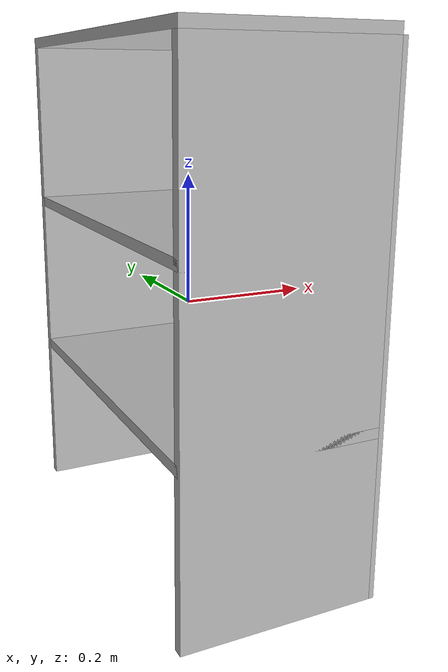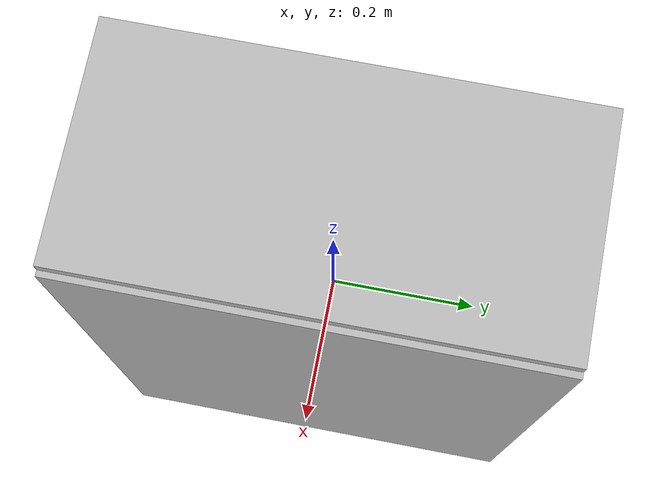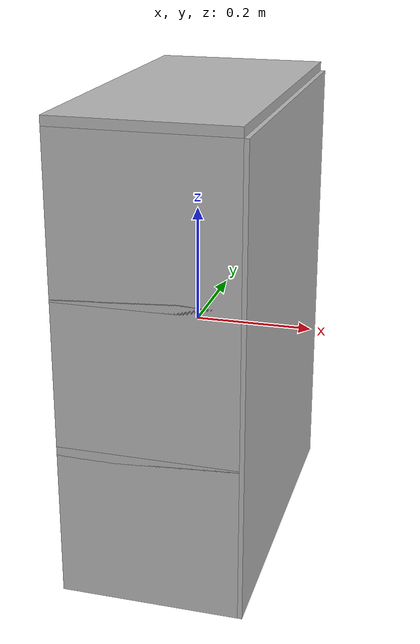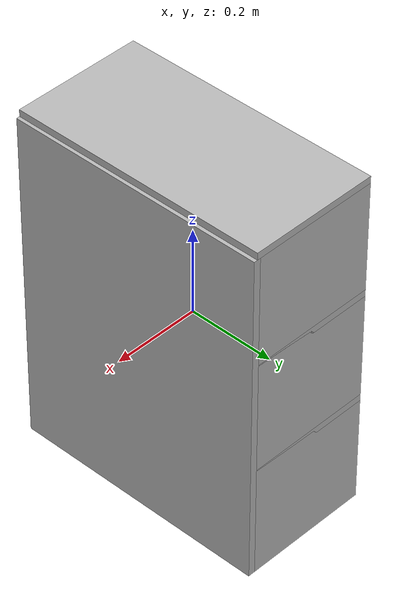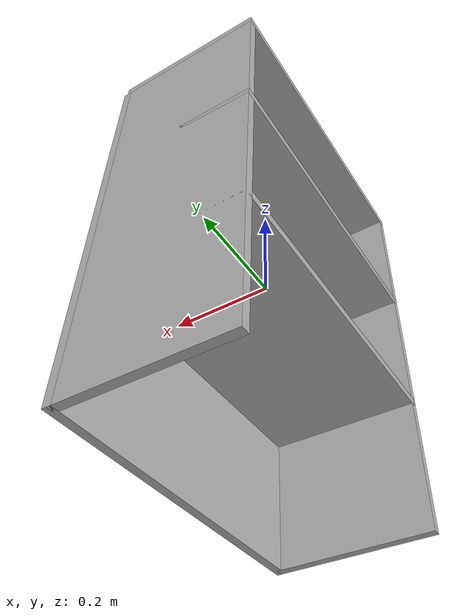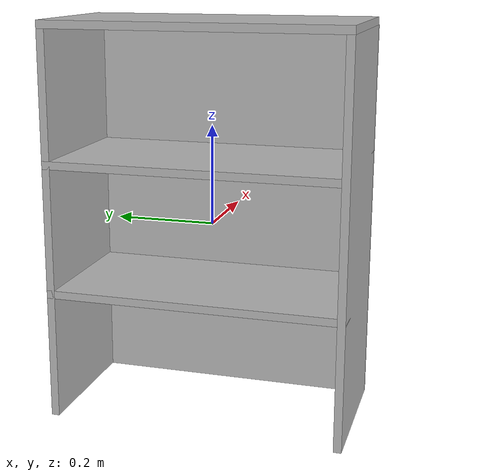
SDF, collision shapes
<?xml version="1.0"?>
<sdf version="1.7">
  <model name="shelves">
    <link name="shelves_body">
      <visual name="shelves_visual">
        <geometry>
          <mesh>
            <uri>shelves.obj</uri>
          </mesh>
        </geometry>
      </visual>
      <collision name="right_wall">
        <pose> 0 0.292 0 0 0 0</pose>
        <geometry>
          <box>
            <size>0.3 0.016 0.783</size>
          </box>
        </geometry>
      </collision>
      <collision name="left_wall">
        <pose> 0 -0.292 0 0 0 0</pose>
        <geometry>
          <box>
            <size>0.3 0.016 0.783</size>
          </box>
        </geometry>
      </collision>
      <collision name="back_wall">
        <pose> 0.150 0.0 0 0 0 1.57</pose>
        <geometry>
          <box>
            <size>0.6 0.016 0.783</size>
          </box>
        </geometry>
      </collision>
    </link>
    <link name="top_and_bottom">
      <collision name="top">
        <pose> 0 0 0.3995 0 0 0</pose>
        <geometry>
          <box>
            <size>0.3 0.6 0.016</size>
          </box>
        </geometry>
      </collision>
      <collision name="shelf_lower">
        <pose> 0 0 -0.13115 0 0 0</pose>
        <geometry>
          <box>
            <size>0.3 0.6 0.016</size>
          </box>
        </geometry>
      </collision>
      <collision name="shelf_upper">
        <pose> 0 0 0.13115 0 0 0</pose>
        <geometry>
          <box>
            <size>0.3 0.6 0.016</size>
          </box>
        </geometry>
      </collision>
    </link>
    <!-- joint between bottom_top and world -->
    <joint name="top_and_bottom_shelves_body" type="fixed">
      <child>top_and_bottom</child>
      <parent>shelves_body</parent>
    </joint>
  </model>
</sdf>
